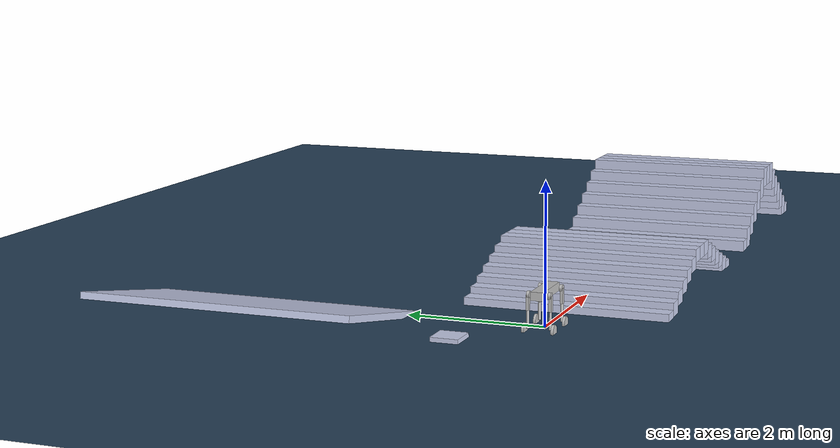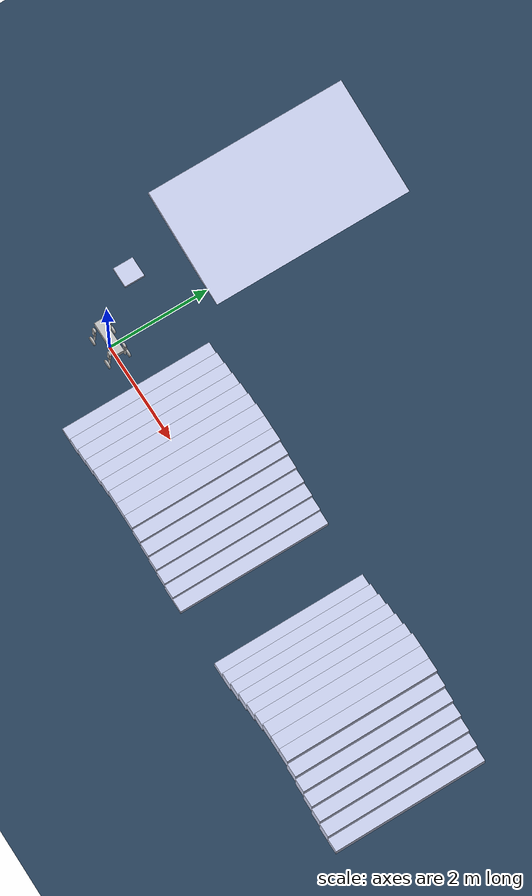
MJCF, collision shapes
<mujoco model="dobot_quad_wheel">
  <include file="terrain.xml"/>
  <compiler angle="radian" meshdir="../meshes/" autolimits="true"/>

  <default>
    <!--tested good param with low sim-to-real gap -->
    <joint damping="0.02" armature="0.000074" frictionloss="0.02" />
  </default>

  <asset>
    <mesh name="trunk" file="trunk.STL"/>
    <mesh name="hip" file="hip.STL"/>
    <mesh name="thigh_l" file="thigh_l.STL"/>
    <mesh name="calf_l" file="calf_l.STL"/>
    <mesh name="wheel_l" file="wheel_l.STL"/>
    <mesh name="thigh_r" file="thigh_r.STL" scale="1 -1 1"/>
    <mesh name="calf_r" file="calf_r.STL" scale="1 -1 1"/>
    <mesh name="wheel_r" file="wheel_r.STL" scale="1 -1 1"/>
  </asset>
  <worldbody>
    <body name="link_trunk" pos="0 0 0.5">
      <inertial pos="0.002447 0.00046 0.002851" quat="0.000745476 0.707388 0.000686781 0.706824" mass="10.249" diaginertia="0.268477 0.247798 0.0458818"/>
      <joint name="joint_fixed_world" type="free"/>
      <geom type="mesh" contype="0" conaffinity="0" group="1" density="0" rgba="0.752941 0.752941 0.752941 1" mesh="trunk"/>
      <geom size="0.35 0.09 0.06" type="box" rgba="0.752941 0.752941 0.752941 1"/>
      <site name="imu" pos="0 0 0"/>
      <body name="link_front_left_hip" pos="0.2525 0.07 0">
        <inertial pos="-0.02418 -0.01744 0" quat="0.57263 0.57263 0.414843 0.414843" mass="0.05576" diaginertia="5.67337e-05 5.003e-05 1.72543e-05"/>
        <joint name="joint_front_left_abad" pos="0 0 0" axis="1 0 0" range="-0.6632 0.6632"/>
        <geom type="mesh" contype="0" conaffinity="0" group="1" density="0" rgba="0.752941 0.752941 0.752941 1" mesh="hip"/>
        <geom size="0.048 0.02" pos="0 0.08 0" quat="0.707105 0.707108 0 0" type="cylinder" rgba="0.752941 0.752941 0.752941 1"/>
        <body name="link_front_left_thigh" pos="0 0.08895 0">
          <inertial pos="0.00144 -0.04127 -0.0294" quat="0.984046 0.177294 -0.0141639 -0.0044598" mass="1.71551" diaginertia="0.010744 0.00934227 0.00281785"/>
          <joint name="joint_front_left_thigh_pitch" pos="0 0 0" axis="0 1 0" range="-2.618 2.618"/>
          <geom type="mesh" contype="0" conaffinity="0" group="1" density="0" rgba="0.752941 0.752941 0.752941 1" mesh="thigh_l"/>
          <geom size="0.1075 0.02 0.03" pos="0 0 -0.1075" quat="0.707105 0 0.707108 0" type="box" rgba="0.752941 0.752941 0.752941 1"/>
          <body name="link_front_left_calf" pos="0 0 -0.215">
            <inertial pos="0 0.01 -0.202" quat="0.707721 0.0232078 -0.0230132 0.705735" mass="0.641" diaginertia="0.00676014 0.00664306 0.000290556"/>
            <joint name="joint_front_left_calf_pitch" pos="0 0 0" axis="0 1 0" range="-2.53 2.53"/>
            <geom type="mesh" contype="0" conaffinity="0" group="1" density="0" rgba="0.752941 0.752941 0.752941 1" mesh="calf_l"/>
            <geom size="0.02 0.1325" pos="0 0 -0.12" type="cylinder" rgba="0.752941 0.752941 0.752941 1"/>
            <body name="link_front_left_wheel" pos="0 0.0335 -0.265">
              <inertial pos="0 0.009 0" quat="0.5 0.5 0.5 0.5" mass="0.546" diaginertia="0.00258662 0.00136155 0.00136142"/>
              <joint name="joint_front_left_wheel" pos="0 0 0" axis="0 1 0"/>
              <geom type="mesh" contype="0" conaffinity="0" group="1" density="0" rgba="0.752941 0.752941 0.752941 1" mesh="wheel_l"/>
              <geom size="0.0875 0.0185" pos="0 0.014 0" quat="0.707107 0.707107 0 0" type="cylinder" rgba="0.752941 0.752941 0.752941 1"/>
            </body>
          </body>
        </body>
      </body>
      <body name="link_front_right_hip" pos="0.2525 -0.07 0">
        <inertial pos="-0.02418 0.01744 0" quat="0.414843 0.414843 0.57263 0.57263" mass="0.05576" diaginertia="5.67337e-05 5.003e-05 1.72543e-05"/>
        <joint name="joint_front_right_abad" pos="0 0 0" axis="1 0 0" range="-0.6632 0.6632"/>
        <geom quat="0 1 0 0" type="mesh" contype="0" conaffinity="0" group="1" density="0" rgba="0.752941 0.752941 0.752941 1" mesh="hip"/>
        <geom size="0.048 0.02" pos="0 -0.08 0" quat="0.707105 0.707108 0 0" type="cylinder" rgba="0.752941 0.752941 0.752941 1"/>
        <body name="link_front_right_thigh" pos="0 -0.08895 0">
          <inertial pos="0.00144 0.04127 -0.0294" quat="0.984046 -0.177294 -0.0141639 0.0044598" mass="1.71551" diaginertia="0.010744 0.00934227 0.00281785"/>
          <joint name="joint_front_right_thigh_pitch" pos="0 0 0" axis="0 1 0" range="-2.618 2.618"/>
          <geom type="mesh" contype="0" conaffinity="0" group="1" density="0" rgba="0.752941 0.752941 0.752941 1" mesh="thigh_r"/>
          <geom size="0.1075 0.02 0.03" pos="0 0 -0.1075" quat="0.707105 0 0.707108 0" type="box" rgba="0.752941 0.752941 0.752941 1"/>
          <body name="link_front_right_calf" pos="0 0 -0.215">
            <inertial pos="0 -0.01 -0.202" quat="0.708174 -0.0230961 0.0231252 0.705281" mass="0.641" diaginertia="0.00676014 0.00664306 0.000290556"/>
            <joint name="joint_front_right_calf_pitch" pos="0 0 0" axis="0 1 0" range="-2.53 2.53"/>
            <geom type="mesh" contype="0" conaffinity="0" group="1" density="0" rgba="0.752941 0.752941 0.752941 1" mesh="calf_r"/>
            <geom size="0.02 0.1325" pos="0 0 -0.12" type="cylinder" rgba="0.752941 0.752941 0.752941 1"/>
            <body name="link_front_right_wheel" pos="0 -0.0335 -0.265">
              <inertial pos="0 -0.009 0" quat="0.5 0.5 0.5 0.5" mass="0.546" diaginertia="0.00258662 0.00136155 0.00136142"/>
              <joint name="joint_front_right_wheel" pos="0 0 0" axis="0 1 0"/>
              <geom type="mesh" contype="0" conaffinity="0" group="1" density="0" rgba="0.752941 0.752941 0.752941 1" mesh="wheel_r"/>
              <geom size="0.0875 0.0185" pos="0 -0.014 0" quat="0.707107 0.707107 0 0" type="cylinder" rgba="0.752941 0.752941 0.752941 1"/>
            </body>
          </body>
        </body>
      </body>
      <body name="link_rear_left_hip" pos="-0.2525 0.07 0">
        <inertial pos="0.02418 -0.01744 0" quat="0.414843 0.414843 0.57263 0.57263" mass="0.05576" diaginertia="5.67337e-05 5.003e-05 1.72543e-05"/>
        <joint name="joint_rear_left_abad" pos="0 0 0" axis="1 0 0" range="-0.6632 0.6632"/>
        <geom quat="0 0 1 0" type="mesh" contype="0" conaffinity="0" group="1" density="0" rgba="0.752941 0.752941 0.752941 1" mesh="hip"/>
        <geom size="0.048 0.02" pos="0 0.08 0" quat="0.707105 0.707108 0 0" type="cylinder" rgba="0.752941 0.752941 0.752941 1"/>
        <body name="link_rear_left_thigh" pos="0 0.08895 0">
          <inertial pos="-0.00144 -0.04127 -0.0294" quat="0.984046 0.177294 0.0141639 0.0044598" mass="1.71551" diaginertia="0.010744 0.00934227 0.00281785"/>
          <joint name="joint_rear_left_thigh_pitch" pos="0 0 0" axis="0 1 0" range="-2.618 2.618"/>
          <geom type="mesh" contype="0" conaffinity="0" group="1" density="0" rgba="0.752941 0.752941 0.752941 1" mesh="thigh_l"/>
          <geom size="0.1075 0.02 0.03" pos="0 0 -0.1075" quat="0.707105 0 0.707108 0" type="box" rgba="0.752941 0.752941 0.752941 1"/>
          <body name="link_rear_left_calf" pos="0 0 -0.215">
            <inertial pos="0 0.01 -0.202" quat="0.707721 0.0232078 -0.0230132 0.705735" mass="0.641" diaginertia="0.00676014 0.00664306 0.000290556"/>
            <joint name="joint_rear_left_calf_pitch" pos="0 0 0" axis="0 1 0" range="-2.53 2.53"/>
            <geom type="mesh" contype="0" conaffinity="0" group="1" density="0" rgba="0.752941 0.752941 0.752941 1" mesh="calf_l"/>
            <geom size="0.02 0.1325" pos="0 0 -0.12" type="cylinder" rgba="0.752941 0.752941 0.752941 1"/>
            <body name="link_rear_left_wheel" pos="0 0.0335 -0.265">
              <inertial pos="0 0.009 0" quat="0.5 0.5 0.5 0.5" mass="0.546" diaginertia="0.00258662 0.00136155 0.00136142"/>
              <joint name="joint_rear_left_wheel" pos="0 0 0" axis="0 1 0"/>
              <geom type="mesh" contype="0" conaffinity="0" group="1" density="0" rgba="0.752941 0.752941 0.752941 1" mesh="wheel_l"/>
              <geom size="0.0875 0.0185" pos="0 0.014 0" quat="0.707107 0.707107 0 0" type="cylinder" rgba="0.752941 0.752941 0.752941 1"/>
            </body>
          </body>
        </body>
      </body>
      <body name="link_rear_right_hip" pos="-0.2525 -0.07 0">
        <inertial pos="0.02418 0.01744 0" quat="0.57263 0.57263 0.414843 0.414843" mass="0.05576" diaginertia="5.67337e-05 5.003e-05 1.72543e-05"/>
        <joint name="joint_rear_right_abad" pos="0 0 0" axis="1 0 0" range="-0.6632 0.6632"/>
        <geom quat="0 0 0 -1" type="mesh" contype="0" conaffinity="0" group="1" density="0" rgba="0.752941 0.752941 0.752941 1" mesh="hip"/>
        <geom size="0.048 0.02" pos="0 -0.08 0" quat="0.707105 0.707108 0 0" type="cylinder" rgba="0.752941 0.752941 0.752941 1"/>
        <body name="link_rear_right_thigh" pos="0 -0.08895 0">
          <inertial pos="-0.00144 0.04127 -0.0294" quat="0.984046 -0.177294 0.0141639 -0.0044598" mass="1.71551" diaginertia="0.010744 0.00934227 0.00281785"/>
          <joint name="joint_rear_right_thigh_pitch" pos="0 0 0" axis="0 1 0" range="-2.618 2.618"/>
          <geom type="mesh" contype="0" conaffinity="0" group="1" density="0" rgba="0.752941 0.752941 0.752941 1" mesh="thigh_r"/>
          <geom size="0.1075 0.02 0.03" pos="0 0 -0.1075" quat="0.707105 0 0.707108 0" type="box" rgba="0.752941 0.752941 0.752941 1"/>
          <body name="link_rear_right_calf" pos="0 0 -0.215">
            <inertial pos="0 -0.01 -0.202" quat="0.708174 -0.0230961 0.0231252 0.705281" mass="0.641" diaginertia="0.00676014 0.00664306 0.000290556"/>
            <joint name="joint_rear_right_calf_pitch" pos="0 0 0" axis="0 1 0" range="-2.53 2.53"/>
            <geom type="mesh" contype="0" conaffinity="0" group="1" density="0" rgba="0.752941 0.752941 0.752941 1" mesh="calf_r"/>
            <geom size="0.02 0.1325" pos="0 0 -0.12" type="cylinder" rgba="0.752941 0.752941 0.752941 1"/>
            <body name="link_rear_right_wheel" pos="0 -0.0335 -0.265">
              <inertial pos="0 -0.009 0" quat="0.5 0.5 0.5 0.5" mass="0.546" diaginertia="0.00258662 0.00136155 0.00136142"/>
              <joint name="joint_rear_right_wheel" pos="0 0 0" axis="0 1 0"/>
              <geom type="mesh" contype="0" conaffinity="0" group="1" density="0" rgba="0.752941 0.752941 0.752941 1" mesh="wheel_r"/>
              <geom size="0.0875 0.0185" pos="0 -0.014 0" quat="0.707107 0.707107 0 0" type="cylinder" rgba="0.752941 0.752941 0.752941 1"/>
            </body>
          </body>
        </body>
      </body>
    </body>
  </worldbody>

  <actuator>
    <motor name="mt00" joint="joint_front_left_abad" ctrlrange="-23 23"/>
    <motor name="mt01" joint="joint_front_left_thigh_pitch" ctrlrange="-23 23"/>
    <motor name="mt02" joint="joint_front_left_calf_pitch" ctrlrange="-55 55"/>
    <motor name="mt03" joint="joint_front_left_wheel" ctrlrange="-20 20"/>

    <motor name="mt04" joint="joint_front_right_abad" ctrlrange="-23 23"/>
    <motor name="mt05" joint="joint_front_right_thigh_pitch" ctrlrange="-23 23"/>
    <motor name="mt06" joint="joint_front_right_calf_pitch" ctrlrange="-55 55"/>
    <motor name="mt07" joint="joint_front_right_wheel" ctrlrange="-20 20"/>

    <motor name="mt08" joint="joint_rear_left_abad" ctrlrange="-23 23"/>
    <motor name="mt09" joint="joint_rear_left_thigh_pitch" ctrlrange="-23 23"/>
    <motor name="mt10" joint="joint_rear_left_calf_pitch" ctrlrange="-55 55"/>
    <motor name="mt11" joint="joint_rear_left_wheel" ctrlrange="-20 20"/>

    <motor name="mt12" joint="joint_rear_right_abad" ctrlrange="-23 23"/>
    <motor name="mt13" joint="joint_rear_right_thigh_pitch" ctrlrange="-23 23"/>
    <motor name="mt14" joint="joint_rear_right_calf_pitch" ctrlrange="-55 55"/>
    <motor name="mt15" joint="joint_rear_right_wheel" ctrlrange="-20 20"/>
  </actuator>

  <sensor>

    <framequat     name='orientation' objtype='site' noise='0.001' objname='imu'/>
    <framepos      name='position' objtype='site' noise='0.001' objname='imu'/>
    <gyro          name='angular-velocity'    site='imu' noise='0.005' cutoff='34.9'/>
    <velocimeter   name='linear-velocity'     site='imu' noise='0.001' cutoff='30'/>
    <accelerometer name='linear-acceleration' site='imu' noise='0.005' cutoff='157'/>
    <magnetometer  name='magnetometer'        site='imu'/>

  </sensor>

</mujoco>

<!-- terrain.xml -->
<mujoco>
  <asset>
    <texture type="skybox" builtin="gradient" rgb1="0.3 0.5 0.7" rgb2="0 0 0" width="512" height="3072"/>
    <texture type="2d" name="groundplane" builtin="checker" mark="edge" rgb1="0.2 0.3 0.4" rgb2="0.1 0.2 0.3" markrgb="0.8 0.8 0.8" width="300" height="300"/>
    <material name="groundplane" texture="groundplane" texuniform="true" texrepeat="5 5" reflectance="0.2"/>
  </asset>

  <default>
    <!-- 主摩擦降低以避免数值问题，保留各向异性 -->
    <!-- 高刚度、临界阻尼 -->
    <!-- 柔和接触过渡，限制反弹 -->
    <geom friction="1.8 0.1 0.01" solref="0.02 1" solimp="0.8 0.99 0.001 0.3 1"/>
    <light castshadow="false" diffuse="1 1 1"/>
    <camera fovy="60"/>
  </default>

<worldbody>
    <light pos="0 0 1.5" dir="0 0 -1" directional="true"/>
    <geom name="geom_floor" size="0 0 0.05" type="plane" material="groundplane"/>
</worldbody>

<!-- stairs: 10cm-->
<worldbody>
    <geom type="box" pos= "1.00 0 0.00" size="0.13 1.5 0.10" rgba="0.79216 0.81961 0.93333 0.5" solref="1e-3 1"/>
    <geom type="box" pos= "1.26 0 0.10" size="0.13 1.5 0.10" rgba="0.79216 0.81961 0.93333 0.5" solref="1e-3 1"/>
    <geom type="box" pos= "1.52 0 0.20" size="0.13 1.5 0.10" rgba="0.79216 0.81961 0.93333 0.5" solref="1e-3 1"/>
    <geom type="box" pos= "1.78 0 0.30" size="0.13 1.5 0.10" rgba="0.79216 0.81961 0.93333 0.5" solref="1e-3 1"/>
    <geom type="box" pos= "2.04 0 0.40" size="0.13 1.5 0.10" rgba="0.79216 0.81961 0.93333 0.5" solref="1e-3 1"/>
    <geom type="box" pos= "2.30 0 0.50" size="0.13 1.5 0.10" rgba="0.79216 0.81961 0.93333 0.5" solref="1e-3 1"/>
    <geom type="box" pos= "2.56 0 0.60" size="0.13 1.5 0.10" rgba="0.79216 0.81961 0.93333 0.5" solref="1e-3 1"/>

    <geom type="box" pos= "2.82 0 0.60" size="0.13 1.5 0.10" rgba="0.79216 0.81961 0.93333 0.5" solref="1e-3 1"/>

    <geom type="box" pos= "3.08 0 0.60" size="0.13 1.5 0.10" rgba="0.79216 0.81961 0.93333 0.5" solref="1e-3 1"/>
    <geom type="box" pos= "3.34 0 0.50" size="0.13 1.5 0.10" rgba="0.79216 0.81961 0.93333 0.5" solref="1e-3 1"/>
    <geom type="box" pos= "3.60 0 0.40" size="0.13 1.5 0.10" rgba="0.79216 0.81961 0.93333 0.5" solref="1e-3 1"/>
    <geom type="box" pos= "3.86 0 0.30" size="0.13 1.5 0.10" rgba="0.79216 0.81961 0.93333 0.5" solref="1e-3 1"/>
    <geom type="box" pos= "4.12 0 0.20" size="0.13 1.5 0.10" rgba="0.79216 0.81961 0.93333 0.5" solref="1e-3 1"/>
    <geom type="box" pos= "4.38 0 0.10" size="0.13 1.5 0.10" rgba="0.79216 0.81961 0.93333 0.5" solref="1e-3 1"/>
    <geom type="box" pos= "4.64 0 0.00" size="0.13 1.5 0.10" rgba="0.79216 0.81961 0.93333 0.5" solref="1e-3 1"/>
</worldbody>

<!-- stairs: 16cm-->
<worldbody>
    <geom type="box" pos= "6.00 0 0.00" size="0.13 1.5 0.16" rgba="0.79216 0.81961 0.93333 0.5" solref="1e-3 1"/>
    <geom type="box" pos= "6.26 0 0.16" size="0.13 1.5 0.16" rgba="0.79216 0.81961 0.93333 0.5" solref="1e-3 1"/>
    <geom type="box" pos= "6.52 0 0.32" size="0.13 1.5 0.16" rgba="0.79216 0.81961 0.93333 0.5" solref="1e-3 1"/>
    <geom type="box" pos= "6.78 0 0.48" size="0.13 1.5 0.16" rgba="0.79216 0.81961 0.93333 0.5" solref="1e-3 1"/>
    <geom type="box" pos= "7.04 0 0.64" size="0.13 1.5 0.16" rgba="0.79216 0.81961 0.93333 0.5" solref="1e-3 1"/>
    <geom type="box" pos= "7.30 0 0.80" size="0.13 1.5 0.16" rgba="0.79216 0.81961 0.93333 0.5" solref="1e-3 1"/>
    <geom type="box" pos= "7.56 0 0.96" size="0.13 1.5 0.16" rgba="0.79216 0.81961 0.93333 0.5" solref="1e-3 1"/>

    <geom type="box" pos= "7.82 0 0.96" size="0.13 1.5 0.16" rgba="0.79216 0.81961 0.93333 0.5" solref="1e-3 1"/>

    <geom type="box" pos= "8.08 0 0.96" size="0.13 1.5 0.16" rgba="0.79216 0.81961 0.93333 0.5" solref="1e-3 1"/>
    <geom type="box" pos= "8.34 0 0.80" size="0.13 1.5 0.16" rgba="0.79216 0.81961 0.93333 0.5" solref="1e-3 1"/>
    <geom type="box" pos= "8.60 0 0.64" size="0.13 1.5 0.16" rgba="0.79216 0.81961 0.93333 0.5" solref="1e-3 1"/>
    <geom type="box" pos= "8.86 0 0.48" size="0.13 1.5 0.16" rgba="0.79216 0.81961 0.93333 0.5" solref="1e-3 1"/>
    <geom type="box" pos= "9.12 0 0.32" size="0.13 1.5 0.16" rgba="0.79216 0.81961 0.93333 0.5" solref="1e-3 1"/>
    <geom type="box" pos= "9.38 0 0.16" size="0.13 1.5 0.16" rgba="0.79216 0.81961 0.93333 0.5" solref="1e-3 1"/>
    <geom type="box" pos= "9.64 0 0.00" size="0.13 1.5 0.16" rgba="0.79216 0.81961 0.93333 0.5" solref="1e-3 1"/>
</worldbody>

<!-- platform-->
<worldbody>
    <geom type="box" pos= "-1 1 0" size="0.2 0.2 0.05" rgba="0.79216 0.81961 0.93333 1" solref="1e-3 1"/>
</worldbody>

<!-- slope-->
<worldbody>
    <geom type="box" pos= "0 4 0" quat="1 0 0.1 0" size="2 2 0.05" rgba="0.79216 0.81961 0.93333 1" solref="1e-3 1"/>
</worldbody>

<!-- stairs-->

</mujoco>
